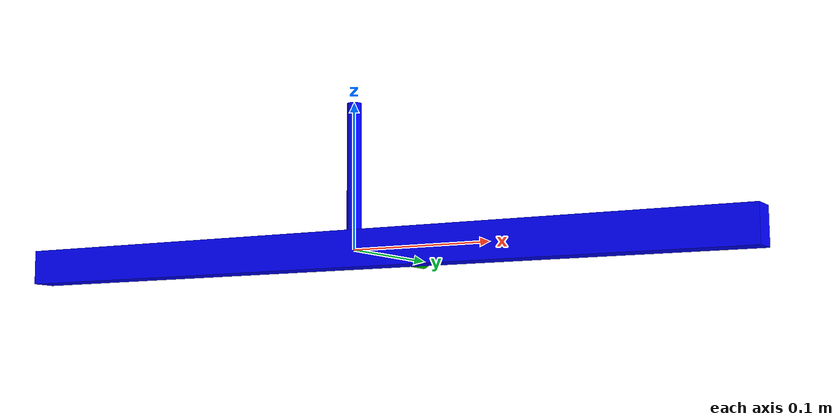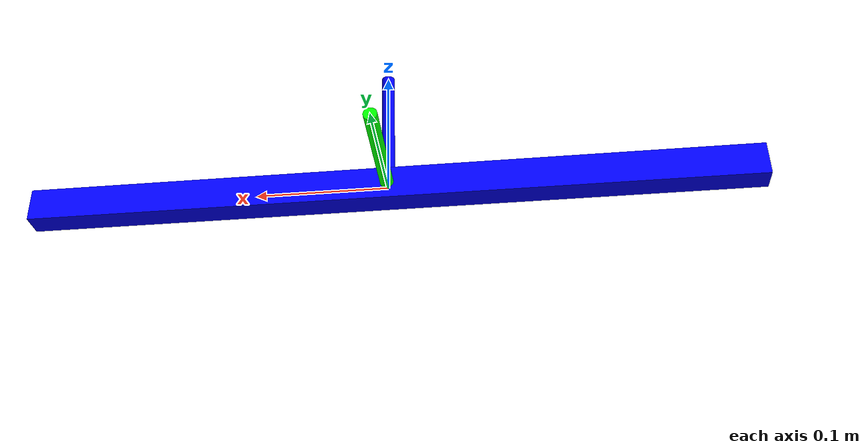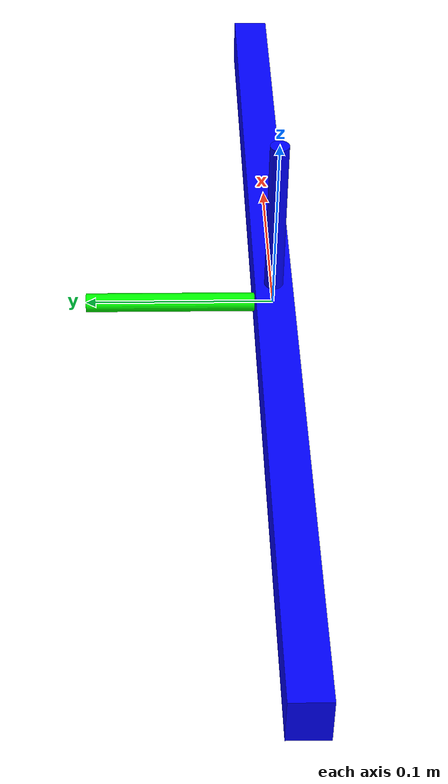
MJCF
<mujoco model="stick">
  <asset>
    <texture file="../textures/red-wood.png" type="cube" name="red-wood" />
    <texture file="../textures/steel-scratched.png" type="cube" name="steel-metal"/>
    <material name="plate_mat" texture="red-wood" texrepeat="3 3" specular="0.4" shininess="0.1" />
    <material name="smetal" reflectance="1.0" shininess="1.0" specular="1.0" texrepeat="1 1" texture="steel-metal" texuniform="true"/>
  </asset>
  <worldbody>
    <body>
      <body name="collision">
        <inertial pos="0 0 0.00543" quat="1 0 0 0" mass="0.947" diaginertia="0.00002 0.006 0.006" />
        <site name="leftp"  pos="-0.25 0 0" size="0.01 0.01 0.01" rgba="0 0 0 0"/>
        <site name="rightp"  pos="0.25 0 0" size="0.01 0.01 0.01" rgba="0 0 0 0"/>

        <site name="peg_orign"  pos="0 0 0"    size="0.01 0.01 0.01" rgba="0 0 1 1" type="sphere" group="1"/>
        <site name="peg_axis_x" pos="0.05 0 0" size="0.005 0.05" quat="0.707105 0 0.707108 0" rgba="1 0 0 1" type="cylinder" group="1"/>
        <site name="peg_axis_y" pos="0 0.05 0" size="0.005 0.05" quat="-0.707105 -0.707108 0 0" rgba="0 1 0 1" type="cylinder" group="1"/>
        <site name="peg_axis_z" pos="0 0 0.05" size="0.005 0.05" quat="1 0 0 0" rgba="0 0 1 1" type="cylinder" group="1"/>

        <geom size="0.275 0.01 0.0125" type="box" group="1" friction="1 0.005 0.0001" rgba="0 0 1 1"/>

        <site name="left_grab_point"  pos="-0.25 0 0" size="0.02 0.02 0.02" rgba="0 1 0 0" type="sphere" group="1"/>
        <site name="right_grab_point" pos="0.25 0 0"  size="0.02 0.02 0.02" rgba="0 1 0 0" type="sphere" group="1"/>
      </body>

      <site rgba="0 0 0 0" size="0.005" pos="0 0 -0.0125" name="bottom_site"/>
      <site rgba="0 0 0 0" size="0.005" pos="0 0 0.0125" name="top_site"/>
      <site rgba="0 0 0 0" size="0.005" pos="0.275 0.275 0" name="horizontal_radius_site"/>
    </body>
  </worldbody>
</mujoco>
